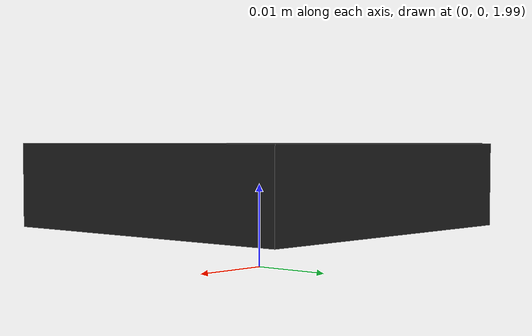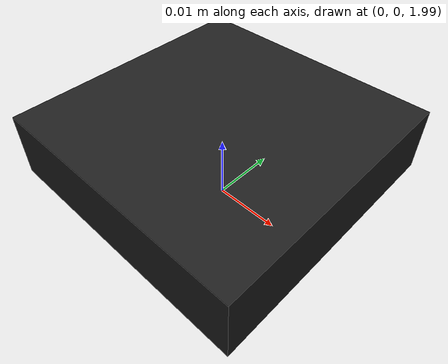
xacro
<?xml version="1.0"?>
<robot xmlns:xacro="http://www.ros.org/wiki/xacro" name="camera">

    <xacro:macro name="usb_camera" params="prefix:=camera">

        <xacro:arg name="camera_offset_x" default="0"/>
        <xacro:arg name="camera_offset_y" default="0"/>
        <xacro:arg name="camera_offset_z" default="2"/>
        <xacro:arg name="row" default="0"/>
        <xacro:arg name="pitch" default="1.57"/>
        <xacro:arg name="yaw" default="0"/>

        <!-- Create laser reference frame -->

        <link name="world"/>

        <link name="${prefix}_link">
            <inertial>
                <mass value="0.1" />
                <origin xyz="0 0 0" />
                <inertia ixx="0.01" ixy="0.0" ixz="0.0"
                         iyy="0.01" iyz="0.0"
                         izz="0.01" />
            </inertial>

            <visual>
                <origin xyz="0 0 0" rpy="0 0 0" />
                <geometry>
                    <box size="0.01 0.04 0.04" />
                </geometry>
                <material name="black"/>
            </visual>

            <collision>
                <origin xyz="0.0 0.0 0.0" rpy="0 0 0" />
                <geometry>
                    <box size="0.01 0.04 0.04" />
                </geometry>
            </collision>
        </link>

       <joint name="cam_joint" type="fixed">
            <origin xyz="$(arg camera_offset_x) $(arg camera_offset_y) $(arg camera_offset_z)" rpy="$(arg row) $(arg pitch) $(arg yaw)"/>
            <parent link="world"/>
            <child link="${prefix}_link"/>

        </joint>

        <gazebo reference="${prefix}_link">
            <material>Gazebo/Black</material>
        </gazebo>

        <gazebo reference="${prefix}_link">
            <sensor type="camera" name="camera_node">
                <update_rate>30.0</update_rate>
                <camera name="head">
                    <horizontal_fov>1.3962634</horizontal_fov>
                    <image>
                        <width>1280</width>
                        <height>720</height>
                        <format>R8G8B8</format>
                    </image>
                    <clip>
                        <near>0.02</near>
                        <far>300</far>
                    </clip>
                    <noise>
                        <type>gaussian</type>
                        <mean>0.0</mean>
                        <stddev>0.007</stddev>
                    </noise>
                </camera>
                <plugin name="gazebo_camera" filename="libgazebo_ros_camera.so">
                    <alwaysOn>true</alwaysOn>
                    <updateRate>0.0</updateRate>
                    <cameraName>/camera</cameraName>
                    <imageTopicName>image_raw</imageTopicName>
                    <cameraInfoTopicName>camera_info</cameraInfoTopicName>
                    <frameName>camera_link</frameName>
                    <hackBaseline>0.07</hackBaseline>
                    <distortionK1>0.0</distortionK1>
                    <distortionK2>0.0</distortionK2>
                    <distortionK3>0.0</distortionK3>
                    <distortionT1>0.0</distortionT1>
                    <distortionT2>0.0</distortionT2>
                </plugin>
            </sensor>
        </gazebo>

    </xacro:macro>

    <xacro:usb_camera prefix="camera"/>
</robot>
